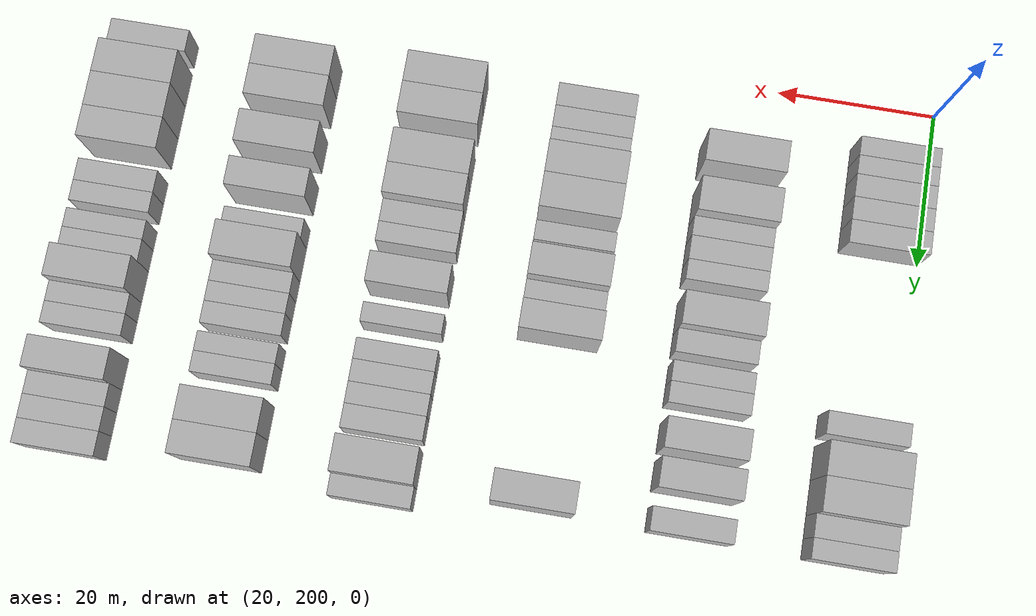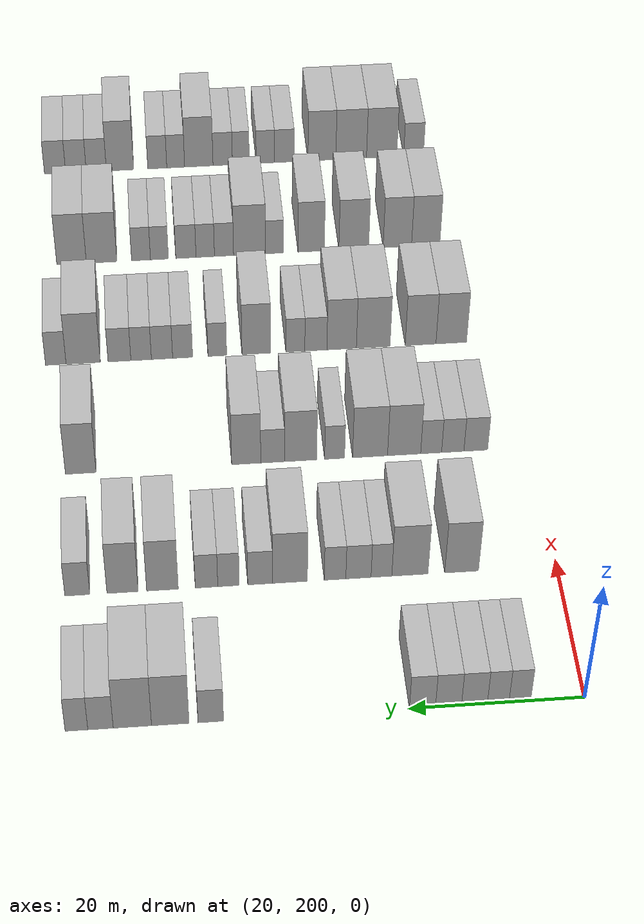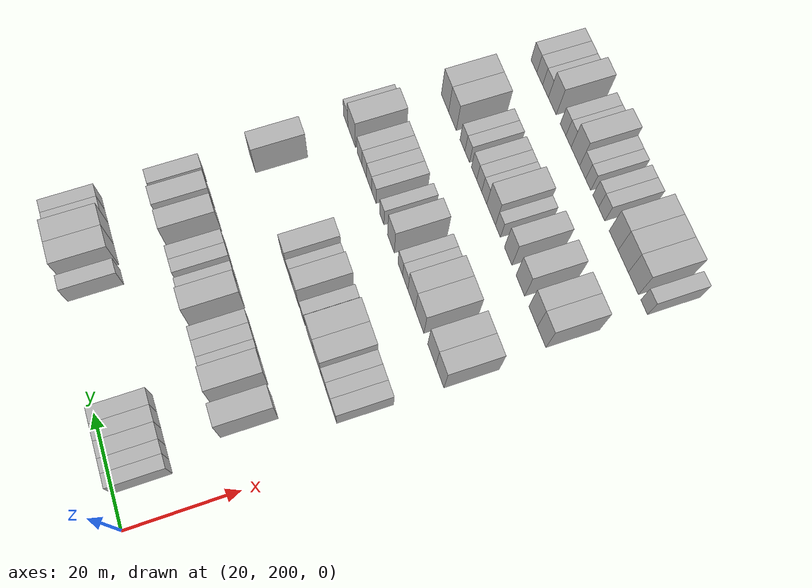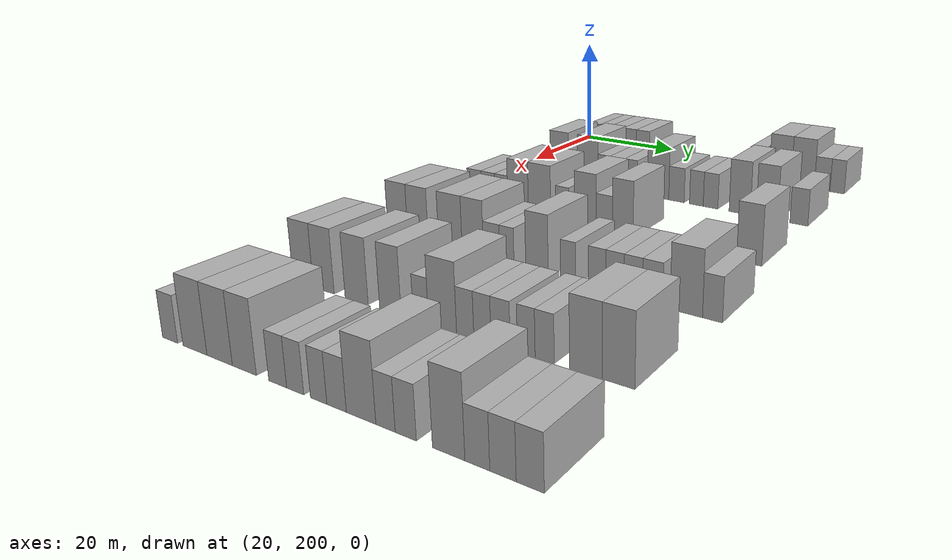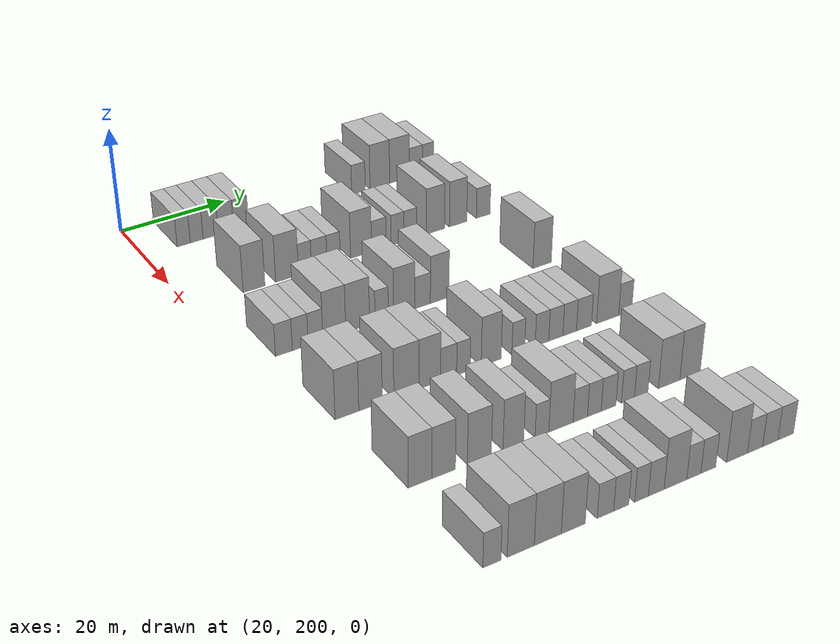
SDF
<sdf version="1.6">
 <world name="default">
  <model name="building_142">
   <static>1</static>
   <pose>25.0000 207.3882 0 0.000000 0.000000 0.000000</pose>
   <link name="link">
    <pose>0 0 3.00 0 0 0</pose>
    <collision name="collision"><geometry><box><size>10.0000 2.4583 6.0000</size></box></geometry></collision>
    <visual name="visual">
     <cast_shadows>0</cast_shadows>
     <geometry><box><size>10.0000 2.4583 6.0000</size></box></geometry>
     <material>
      <script>
       <uri>model://HANNAS_wall/materials/scripts</uri>
       <uri>model://HANNAS_wall/materials/textures</uri>
       <name>vrc/HANNAS_wall</name>
      </script>
     </material>
    </visual>
   </link>
  </model>
  <model name="building_143">
   <static>1</static>
   <pose>25.0000 209.8398 0 0.000000 0.000000 0.000000</pose>
   <link name="link">
    <pose>0 0 3.00 0 0 0</pose>
    <collision name="collision"><geometry><box><size>10.0000 2.4448 6.0000</size></box></geometry></collision>
    <visual name="visual">
     <cast_shadows>0</cast_shadows>
     <geometry><box><size>10.0000 2.4448 6.0000</size></box></geometry>
     <material>
      <script>
       <uri>model://HANNAS_wall/materials/scripts</uri>
       <uri>model://HANNAS_wall/materials/textures</uri>
       <name>vrc/HANNAS_wall</name>
      </script>
     </material>
    </visual>
   </link>
  </model>
  <model name="building_144">
   <static>1</static>
   <pose>25.0000 212.5247 0 0.000000 0.000000 0.000000</pose>
   <link name="link">
    <pose>0 0 3.00 0 0 0</pose>
    <collision name="collision"><geometry><box><size>10.0000 2.9249 6.0000</size></box></geometry></collision>
    <visual name="visual">
     <cast_shadows>0</cast_shadows>
     <geometry><box><size>10.0000 2.9249 6.0000</size></box></geometry>
     <material>
      <script>
       <uri>model://HANNAS_wall/materials/scripts</uri>
       <uri>model://HANNAS_wall/materials/textures</uri>
       <name>vrc/HANNAS_wall</name>
      </script>
     </material>
    </visual>
   </link>
  </model>
  <model name="building_145">
   <static>1</static>
   <pose>25.0000 215.4558 0 0.000000 0.000000 0.000000</pose>
   <link name="link">
    <pose>0 0 3.00 0 0 0</pose>
    <collision name="collision"><geometry><box><size>10.0000 2.9374 6.0000</size></box></geometry></collision>
    <visual name="visual">
     <cast_shadows>0</cast_shadows>
     <geometry><box><size>10.0000 2.9374 6.0000</size></box></geometry>
     <material>
      <script>
       <uri>model://HANNAS_wall/materials/scripts</uri>
       <uri>model://HANNAS_wall/materials/textures</uri>
       <name>vrc/HANNAS_wall</name>
      </script>
     </material>
    </visual>
   </link>
  </model>
  <model name="building_146">
   <static>1</static>
   <pose>25.0000 218.3925 0 0.000000 0.000000 0.000000</pose>
   <link name="link">
    <pose>0 0 3.00 0 0 0</pose>
    <collision name="collision"><geometry><box><size>10.0000 2.9360 6.0000</size></box></geometry></collision>
    <visual name="visual">
     <cast_shadows>0</cast_shadows>
     <geometry><box><size>10.0000 2.9360 6.0000</size></box></geometry>
     <material>
      <script>
       <uri>model://HANNAS_wall/materials/scripts</uri>
       <uri>model://HANNAS_wall/materials/textures</uri>
       <name>vrc/HANNAS_wall</name>
      </script>
     </material>
    </visual>
   </link>
  </model>
  <model name="building_147">
   <static>1</static>
   <pose>25.0000 242.1248 0 0.000000 0.000000 0.000000</pose>
   <link name="link">
    <pose>0 0 3.00 0 0 0</pose>
    <collision name="collision"><geometry><box><size>10.0000 2.8428 6.0000</size></box></geometry></collision>
    <visual name="visual">
     <cast_shadows>0</cast_shadows>
     <geometry><box><size>10.0000 2.8428 6.0000</size></box></geometry>
     <material>
      <script>
       <uri>model://HANNAS_wall/materials/scripts</uri>
       <uri>model://HANNAS_wall/materials/textures</uri>
       <name>vrc/HANNAS_wall</name>
      </script>
     </material>
    </visual>
   </link>
  </model>
  <model name="building_148">
   <static>1</static>
   <pose>25.0000 246.6315 0 0.000000 0.000000 0.000000</pose>
   <link name="link">
    <pose>0 0 4.50 0 0 0</pose>
    <collision name="collision"><geometry><box><size>10.0000 4.1706 9.0000</size></box></geometry></collision>
    <visual name="visual">
     <cast_shadows>0</cast_shadows>
     <geometry><box><size>10.0000 4.1706 9.0000</size></box></geometry>
     <material>
      <script>
       <uri>model://HANNAS_wall/materials/scripts</uri>
       <uri>model://HANNAS_wall/materials/textures</uri>
       <name>vrc/HANNAS_wall</name>
      </script>
     </material>
    </visual>
   </link>
  </model>
  <model name="building_149">
   <static>1</static>
   <pose>25.0000 250.8451 0 0.000000 0.000000 0.000000</pose>
   <link name="link">
    <pose>0 0 4.50 0 0 0</pose>
    <collision name="collision"><geometry><box><size>10.0000 4.2565 9.0000</size></box></geometry></collision>
    <visual name="visual">
     <cast_shadows>0</cast_shadows>
     <geometry><box><size>10.0000 4.2565 9.0000</size></box></geometry>
     <material>
      <script>
       <uri>model://HANNAS_wall/materials/scripts</uri>
       <uri>model://HANNAS_wall/materials/textures</uri>
       <name>vrc/HANNAS_wall</name>
      </script>
     </material>
    </visual>
   </link>
  </model>
  <model name="building_150">
   <static>1</static>
   <pose>25.0000 254.3845 0 0.000000 0.000000 0.000000</pose>
   <link name="link">
    <pose>0 0 3.00 0 0 0</pose>
    <collision name="collision"><geometry><box><size>10.0000 2.8224 6.0000</size></box></geometry></collision>
    <visual name="visual">
     <cast_shadows>0</cast_shadows>
     <geometry><box><size>10.0000 2.8224 6.0000</size></box></geometry>
     <material>
      <script>
       <uri>model://HANNAS_wall/materials/scripts</uri>
       <uri>model://HANNAS_wall/materials/textures</uri>
       <name>vrc/HANNAS_wall</name>
      </script>
     </material>
    </visual>
   </link>
  </model>
  <model name="building_151">
   <static>1</static>
   <pose>25.0000 257.0540 0 0.000000 0.000000 0.000000</pose>
   <link name="link">
    <pose>0 0 3.00 0 0 0</pose>
    <collision name="collision"><geometry><box><size>10.0000 2.5165 6.0000</size></box></geometry></collision>
    <visual name="visual">
     <cast_shadows>0</cast_shadows>
     <geometry><box><size>10.0000 2.5165 6.0000</size></box></geometry>
     <material>
      <script>
       <uri>model://HANNAS_wall/materials/scripts</uri>
       <uri>model://HANNAS_wall/materials/textures</uri>
       <name>vrc/HANNAS_wall</name>
      </script>
     </material>
    </visual>
   </link>
  </model>
  <model name="building_296">
   <static>1</static>
   <pose>44.0000 211.3644 0 0.000000 0.000000 0.000000</pose>
   <link name="link">
    <pose>0 0 4.50 0 0 0</pose>
    <collision name="collision"><geometry><box><size>10.0000 4.0205 9.0000</size></box></geometry></collision>
    <visual name="visual">
     <cast_shadows>0</cast_shadows>
     <geometry><box><size>10.0000 4.0205 9.0000</size></box></geometry>
     <material>
      <script>
       <uri>model://HANNAS_wall/materials/scripts</uri>
       <uri>model://HANNAS_wall/materials/textures</uri>
       <name>vrc/HANNAS_wall</name>
      </script>
     </material>
    </visual>
   </link>
  </model>
  <model name="building_297">
   <static>1</static>
   <pose>44.0000 217.5234 0 0.000000 0.000000 0.000000</pose>
   <link name="link">
    <pose>0 0 4.50 0 0 0</pose>
    <collision name="collision"><geometry><box><size>10.0000 4.2974 9.0000</size></box></geometry></collision>
    <visual name="visual">
     <cast_shadows>0</cast_shadows>
     <geometry><box><size>10.0000 4.2974 9.0000</size></box></geometry>
     <material>
      <script>
       <uri>model://HANNAS_wall/materials/scripts</uri>
       <uri>model://HANNAS_wall/materials/textures</uri>
       <name>vrc/HANNAS_wall</name>
      </script>
     </material>
    </visual>
   </link>
  </model>
  <model name="building_298">
   <static>1</static>
   <pose>44.0000 220.9072 0 0.000000 0.000000 0.000000</pose>
   <link name="link">
    <pose>0 0 3.00 0 0 0</pose>
    <collision name="collision"><geometry><box><size>10.0000 2.4702 6.0000</size></box></geometry></collision>
    <visual name="visual">
     <cast_shadows>0</cast_shadows>
     <geometry><box><size>10.0000 2.4702 6.0000</size></box></geometry>
     <material>
      <script>
       <uri>model://HANNAS_wall/materials/scripts</uri>
       <uri>model://HANNAS_wall/materials/textures</uri>
       <name>vrc/HANNAS_wall</name>
      </script>
     </material>
    </visual>
   </link>
  </model>
  <model name="building_299">
   <static>1</static>
   <pose>44.0000 223.6390 0 0.000000 0.000000 0.000000</pose>
   <link name="link">
    <pose>0 0 3.00 0 0 0</pose>
    <collision name="collision"><geometry><box><size>10.0000 2.9933 6.0000</size></box></geometry></collision>
    <visual name="visual">
     <cast_shadows>0</cast_shadows>
     <geometry><box><size>10.0000 2.9933 6.0000</size></box></geometry>
     <material>
      <script>
       <uri>model://HANNAS_wall/materials/scripts</uri>
       <uri>model://HANNAS_wall/materials/textures</uri>
       <name>vrc/HANNAS_wall</name>
      </script>
     </material>
    </visual>
   </link>
  </model>
  <model name="building_300">
   <static>1</static>
   <pose>44.0000 226.4144 0 0.000000 0.000000 0.000000</pose>
   <link name="link">
    <pose>0 0 3.00 0 0 0</pose>
    <collision name="collision"><geometry><box><size>10.0000 2.5577 6.0000</size></box></geometry></collision>
    <visual name="visual">
     <cast_shadows>0</cast_shadows>
     <geometry><box><size>10.0000 2.5577 6.0000</size></box></geometry>
     <material>
      <script>
       <uri>model://HANNAS_wall/materials/scripts</uri>
       <uri>model://HANNAS_wall/materials/textures</uri>
       <name>vrc/HANNAS_wall</name>
      </script>
     </material>
    </visual>
   </link>
  </model>
  <model name="building_301">
   <static>1</static>
   <pose>44.0000 231.7532 0 0.000000 0.000000 0.000000</pose>
   <link name="link">
    <pose>0 0 4.50 0 0 0</pose>
    <collision name="collision"><geometry><box><size>10.0000 4.1199 9.0000</size></box></geometry></collision>
    <visual name="visual">
     <cast_shadows>0</cast_shadows>
     <geometry><box><size>10.0000 4.1199 9.0000</size></box></geometry>
     <material>
      <script>
       <uri>model://HANNAS_wall/materials/scripts</uri>
       <uri>model://HANNAS_wall/materials/textures</uri>
       <name>vrc/HANNAS_wall</name>
      </script>
     </material>
    </visual>
   </link>
  </model>
  <model name="building_302">
   <static>1</static>
   <pose>44.0000 235.2736 0 0.000000 0.000000 0.000000</pose>
   <link name="link">
    <pose>0 0 3.00 0 0 0</pose>
    <collision name="collision"><geometry><box><size>10.0000 2.9209 6.0000</size></box></geometry></collision>
    <visual name="visual">
     <cast_shadows>0</cast_shadows>
     <geometry><box><size>10.0000 2.9209 6.0000</size></box></geometry>
     <material>
      <script>
       <uri>model://HANNAS_wall/materials/scripts</uri>
       <uri>model://HANNAS_wall/materials/textures</uri>
       <name>vrc/HANNAS_wall</name>
      </script>
     </material>
    </visual>
   </link>
  </model>
  <model name="building_303">
   <static>1</static>
   <pose>44.0000 239.0024 0 0.000000 0.000000 0.000000</pose>
   <link name="link">
    <pose>0 0 3.00 0 0 0</pose>
    <collision name="collision"><geometry><box><size>10.0000 2.5367 6.0000</size></box></geometry></collision>
    <visual name="visual">
     <cast_shadows>0</cast_shadows>
     <geometry><box><size>10.0000 2.5367 6.0000</size></box></geometry>
     <material>
      <script>
       <uri>model://HANNAS_wall/materials/scripts</uri>
       <uri>model://HANNAS_wall/materials/textures</uri>
       <name>vrc/HANNAS_wall</name>
      </script>
     </material>
    </visual>
   </link>
  </model>
  <model name="building_304">
   <static>1</static>
   <pose>44.0000 241.5936 0 0.000000 0.000000 0.000000</pose>
   <link name="link">
    <pose>0 0 3.00 0 0 0</pose>
    <collision name="collision"><geometry><box><size>10.0000 2.6457 6.0000</size></box></geometry></collision>
    <visual name="visual">
     <cast_shadows>0</cast_shadows>
     <geometry><box><size>10.0000 2.6457 6.0000</size></box></geometry>
     <material>
      <script>
       <uri>model://HANNAS_wall/materials/scripts</uri>
       <uri>model://HANNAS_wall/materials/textures</uri>
       <name>vrc/HANNAS_wall</name>
      </script>
     </material>
    </visual>
   </link>
  </model>
  <model name="building_305">
   <static>1</static>
   <pose>44.0000 246.7717 0 0.000000 0.000000 0.000000</pose>
   <link name="link">
    <pose>0 0 4.50 0 0 0</pose>
    <collision name="collision"><geometry><box><size>10.0000 3.7106 9.0000</size></box></geometry></collision>
    <visual name="visual">
     <cast_shadows>0</cast_shadows>
     <geometry><box><size>10.0000 3.7106 9.0000</size></box></geometry>
     <material>
      <script>
       <uri>model://HANNAS_wall/materials/scripts</uri>
       <uri>model://HANNAS_wall/materials/textures</uri>
       <name>vrc/HANNAS_wall</name>
      </script>
     </material>
    </visual>
   </link>
  </model>
  <model name="building_306">
   <static>1</static>
   <pose>44.0000 251.4576 0 0.000000 0.000000 0.000000</pose>
   <link name="link">
    <pose>0 0 4.50 0 0 0</pose>
    <collision name="collision"><geometry><box><size>10.0000 3.6611 9.0000</size></box></geometry></collision>
    <visual name="visual">
     <cast_shadows>0</cast_shadows>
     <geometry><box><size>10.0000 3.6611 9.0000</size></box></geometry>
     <material>
      <script>
       <uri>model://HANNAS_wall/materials/scripts</uri>
       <uri>model://HANNAS_wall/materials/textures</uri>
       <name>vrc/HANNAS_wall</name>
      </script>
     </material>
    </visual>
   </link>
  </model>
  <model name="building_307">
   <static>1</static>
   <pose>44.0000 256.7515 0 0.000000 0.000000 0.000000</pose>
   <link name="link">
    <pose>0 0 3.00 0 0 0</pose>
    <collision name="collision"><geometry><box><size>10.0000 2.9267 6.0000</size></box></geometry></collision>
    <visual name="visual">
     <cast_shadows>0</cast_shadows>
     <geometry><box><size>10.0000 2.9267 6.0000</size></box></geometry>
     <material>
      <script>
       <uri>model://HANNAS_wall/materials/scripts</uri>
       <uri>model://HANNAS_wall/materials/textures</uri>
       <name>vrc/HANNAS_wall</name>
      </script>
     </material>
    </visual>
   </link>
  </model>
  <model name="building_475">
   <static>1</static>
   <pose>63.0000 206.9762 0 0.000000 0.000000 0.000000</pose>
   <link name="link">
    <pose>0 0 3.00 0 0 0</pose>
    <collision name="collision"><geometry><box><size>10.0000 2.9743 6.0000</size></box></geometry></collision>
    <visual name="visual">
     <cast_shadows>0</cast_shadows>
     <geometry><box><size>10.0000 2.9743 6.0000</size></box></geometry>
     <material>
      <script>
       <uri>model://HANNAS_wall/materials/scripts</uri>
       <uri>model://HANNAS_wall/materials/textures</uri>
       <name>vrc/HANNAS_wall</name>
      </script>
     </material>
    </visual>
   </link>
  </model>
  <model name="building_476">
   <static>1</static>
   <pose>63.0000 209.8672 0 0.000000 0.000000 0.000000</pose>
   <link name="link">
    <pose>0 0 3.00 0 0 0</pose>
    <collision name="collision"><geometry><box><size>10.0000 2.8077 6.0000</size></box></geometry></collision>
    <visual name="visual">
     <cast_shadows>0</cast_shadows>
     <geometry><box><size>10.0000 2.8077 6.0000</size></box></geometry>
     <material>
      <script>
       <uri>model://HANNAS_wall/materials/scripts</uri>
       <uri>model://HANNAS_wall/materials/textures</uri>
       <name>vrc/HANNAS_wall</name>
      </script>
     </material>
    </visual>
   </link>
  </model>
  <model name="building_477">
   <static>1</static>
   <pose>63.0000 212.5830 0 0.000000 0.000000 0.000000</pose>
   <link name="link">
    <pose>0 0 3.00 0 0 0</pose>
    <collision name="collision"><geometry><box><size>10.0000 2.6239 6.0000</size></box></geometry></collision>
    <visual name="visual">
     <cast_shadows>0</cast_shadows>
     <geometry><box><size>10.0000 2.6239 6.0000</size></box></geometry>
     <material>
      <script>
       <uri>model://HANNAS_wall/materials/scripts</uri>
       <uri>model://HANNAS_wall/materials/textures</uri>
       <name>vrc/HANNAS_wall</name>
      </script>
     </material>
    </visual>
   </link>
  </model>
  <model name="building_478">
   <static>1</static>
   <pose>63.0000 215.9695 0 0.000000 0.000000 0.000000</pose>
   <link name="link">
    <pose>0 0 4.50 0 0 0</pose>
    <collision name="collision"><geometry><box><size>10.0000 4.1491 9.0000</size></box></geometry></collision>
    <visual name="visual">
     <cast_shadows>0</cast_shadows>
     <geometry><box><size>10.0000 4.1491 9.0000</size></box></geometry>
     <material>
      <script>
       <uri>model://HANNAS_wall/materials/scripts</uri>
       <uri>model://HANNAS_wall/materials/textures</uri>
       <name>vrc/HANNAS_wall</name>
      </script>
     </material>
    </visual>
   </link>
  </model>
  <model name="building_479">
   <static>1</static>
   <pose>63.0000 220.2307 0 0.000000 0.000000 0.000000</pose>
   <link name="link">
    <pose>0 0 4.50 0 0 0</pose>
    <collision name="collision"><geometry><box><size>10.0000 4.3733 9.0000</size></box></geometry></collision>
    <visual name="visual">
     <cast_shadows>0</cast_shadows>
     <geometry><box><size>10.0000 4.3733 9.0000</size></box></geometry>
     <material>
      <script>
       <uri>model://HANNAS_wall/materials/scripts</uri>
       <uri>model://HANNAS_wall/materials/textures</uri>
       <name>vrc/HANNAS_wall</name>
      </script>
     </material>
    </visual>
   </link>
  </model>
  <model name="building_480">
   <static>1</static>
   <pose>63.0000 224.6604 0 0.000000 0.000000 0.000000</pose>
   <link name="link">
    <pose>0 0 3.00 0 0 0</pose>
    <collision name="collision"><geometry><box><size>10.0000 2.4862 6.0000</size></box></geometry></collision>
    <visual name="visual">
     <cast_shadows>0</cast_shadows>
     <geometry><box><size>10.0000 2.4862 6.0000</size></box></geometry>
     <material>
      <script>
       <uri>model://HANNAS_wall/materials/scripts</uri>
       <uri>model://HANNAS_wall/materials/textures</uri>
       <name>vrc/HANNAS_wall</name>
      </script>
     </material>
    </visual>
   </link>
  </model>
  <model name="building_481">
   <static>1</static>
   <pose>63.0000 228.9023 0 0.000000 0.000000 0.000000</pose>
   <link name="link">
    <pose>0 0 4.50 0 0 0</pose>
    <collision name="collision"><geometry><box><size>10.0000 3.9976 9.0000</size></box></geometry></collision>
    <visual name="visual">
     <cast_shadows>0</cast_shadows>
     <geometry><box><size>10.0000 3.9976 9.0000</size></box></geometry>
     <material>
      <script>
       <uri>model://HANNAS_wall/materials/scripts</uri>
       <uri>model://HANNAS_wall/materials/textures</uri>
       <name>vrc/HANNAS_wall</name>
      </script>
     </material>
    </visual>
   </link>
  </model>
  <model name="building_482">
   <static>1</static>
   <pose>63.0000 232.3805 0 0.000000 0.000000 0.000000</pose>
   <link name="link">
    <pose>0 0 3.00 0 0 0</pose>
    <collision name="collision"><geometry><box><size>10.0000 2.9589 6.0000</size></box></geometry></collision>
    <visual name="visual">
     <cast_shadows>0</cast_shadows>
     <geometry><box><size>10.0000 2.9589 6.0000</size></box></geometry>
     <material>
      <script>
       <uri>model://HANNAS_wall/materials/scripts</uri>
       <uri>model://HANNAS_wall/materials/textures</uri>
       <name>vrc/HANNAS_wall</name>
      </script>
     </material>
    </visual>
   </link>
  </model>
  <model name="building_483">
   <static>1</static>
   <pose>63.0000 235.6655 0 0.000000 0.000000 0.000000</pose>
   <link name="link">
    <pose>0 0 4.50 0 0 0</pose>
    <collision name="collision"><geometry><box><size>10.0000 3.6110 9.0000</size></box></geometry></collision>
    <visual name="visual">
     <cast_shadows>0</cast_shadows>
     <geometry><box><size>10.0000 3.6110 9.0000</size></box></geometry>
     <material>
      <script>
       <uri>model://HANNAS_wall/materials/scripts</uri>
       <uri>model://HANNAS_wall/materials/textures</uri>
       <name>vrc/HANNAS_wall</name>
      </script>
     </material>
    </visual>
   </link>
  </model>
  <model name="building_484">
   <static>1</static>
   <pose>63.0000 256.1323 0 0.000000 0.000000 0.000000</pose>
   <link name="link">
    <pose>0 0 4.50 0 0 0</pose>
    <collision name="collision"><geometry><box><size>10.0000 3.7742 9.0000</size></box></geometry></collision>
    <visual name="visual">
     <cast_shadows>0</cast_shadows>
     <geometry><box><size>10.0000 3.7742 9.0000</size></box></geometry>
     <material>
      <script>
       <uri>model://HANNAS_wall/materials/scripts</uri>
       <uri>model://HANNAS_wall/materials/textures</uri>
       <name>vrc/HANNAS_wall</name>
      </script>
     </material>
    </visual>
   </link>
  </model>
  <model name="building_651">
   <static>1</static>
   <pose>82.0000 207.5186 0 0.000000 0.000000 0.000000</pose>
   <link name="link">
    <pose>0 0 4.50 0 0 0</pose>
    <collision name="collision"><geometry><box><size>10.0000 4.0314 9.0000</size></box></geometry></collision>
    <visual name="visual">
     <cast_shadows>0</cast_shadows>
     <geometry><box><size>10.0000 4.0314 9.0000</size></box></geometry>
     <material>
      <script>
       <uri>model://HANNAS_wall/materials/scripts</uri>
       <uri>model://HANNAS_wall/materials/textures</uri>
       <name>vrc/HANNAS_wall</name>
      </script>
     </material>
    </visual>
   </link>
  </model>
  <model name="building_652">
   <static>1</static>
   <pose>82.0000 211.5571 0 0.000000 0.000000 0.000000</pose>
   <link name="link">
    <pose>0 0 4.50 0 0 0</pose>
    <collision name="collision"><geometry><box><size>10.0000 4.0456 9.0000</size></box></geometry></collision>
    <visual name="visual">
     <cast_shadows>0</cast_shadows>
     <geometry><box><size>10.0000 4.0456 9.0000</size></box></geometry>
     <material>
      <script>
       <uri>model://HANNAS_wall/materials/scripts</uri>
       <uri>model://HANNAS_wall/materials/textures</uri>
       <name>vrc/HANNAS_wall</name>
      </script>
     </material>
    </visual>
   </link>
  </model>
  <model name="building_653">
   <static>1</static>
   <pose>82.0000 217.7902 0 0.000000 0.000000 0.000000</pose>
   <link name="link">
    <pose>0 0 4.50 0 0 0</pose>
    <collision name="collision"><geometry><box><size>10.0000 4.4208 9.0000</size></box></geometry></collision>
    <visual name="visual">
     <cast_shadows>0</cast_shadows>
     <geometry><box><size>10.0000 4.4208 9.0000</size></box></geometry>
     <material>
      <script>
       <uri>model://HANNAS_wall/materials/scripts</uri>
       <uri>model://HANNAS_wall/materials/textures</uri>
       <name>vrc/HANNAS_wall</name>
      </script>
     </material>
    </visual>
   </link>
  </model>
  <model name="building_654">
   <static>1</static>
   <pose>82.0000 221.9342 0 0.000000 0.000000 0.000000</pose>
   <link name="link">
    <pose>0 0 4.50 0 0 0</pose>
    <collision name="collision"><geometry><box><size>10.0000 3.8672 9.0000</size></box></geometry></collision>
    <visual name="visual">
     <cast_shadows>0</cast_shadows>
     <geometry><box><size>10.0000 3.8672 9.0000</size></box></geometry>
     <material>
      <script>
       <uri>model://HANNAS_wall/materials/scripts</uri>
       <uri>model://HANNAS_wall/materials/textures</uri>
       <name>vrc/HANNAS_wall</name>
      </script>
     </material>
    </visual>
   </link>
  </model>
  <model name="building_655">
   <static>1</static>
   <pose>82.0000 225.3136 0 0.000000 0.000000 0.000000</pose>
   <link name="link">
    <pose>0 0 3.00 0 0 0</pose>
    <collision name="collision"><geometry><box><size>10.0000 2.8915 6.0000</size></box></geometry></collision>
    <visual name="visual">
     <cast_shadows>0</cast_shadows>
     <geometry><box><size>10.0000 2.8915 6.0000</size></box></geometry>
     <material>
      <script>
       <uri>model://HANNAS_wall/materials/scripts</uri>
       <uri>model://HANNAS_wall/materials/textures</uri>
       <name>vrc/HANNAS_wall</name>
      </script>
     </material>
    </visual>
   </link>
  </model>
  <model name="building_656">
   <static>1</static>
   <pose>82.0000 227.9972 0 0.000000 0.000000 0.000000</pose>
   <link name="link">
    <pose>0 0 3.00 0 0 0</pose>
    <collision name="collision"><geometry><box><size>10.0000 2.4757 6.0000</size></box></geometry></collision>
    <visual name="visual">
     <cast_shadows>0</cast_shadows>
     <geometry><box><size>10.0000 2.4757 6.0000</size></box></geometry>
     <material>
      <script>
       <uri>model://HANNAS_wall/materials/scripts</uri>
       <uri>model://HANNAS_wall/materials/textures</uri>
       <name>vrc/HANNAS_wall</name>
      </script>
     </material>
    </visual>
   </link>
  </model>
  <model name="building_657">
   <static>1</static>
   <pose>82.0000 233.0988 0 0.000000 0.000000 0.000000</pose>
   <link name="link">
    <pose>0 0 4.50 0 0 0</pose>
    <collision name="collision"><geometry><box><size>10.0000 3.7275 9.0000</size></box></geometry></collision>
    <visual name="visual">
     <cast_shadows>0</cast_shadows>
     <geometry><box><size>10.0000 3.7275 9.0000</size></box></geometry>
     <material>
      <script>
       <uri>model://HANNAS_wall/materials/scripts</uri>
       <uri>model://HANNAS_wall/materials/textures</uri>
       <name>vrc/HANNAS_wall</name>
      </script>
     </material>
    </visual>
   </link>
  </model>
  <model name="building_658">
   <static>1</static>
   <pose>82.0000 238.1775 0 0.000000 0.000000 0.000000</pose>
   <link name="link">
    <pose>0 0 3.00 0 0 0</pose>
    <collision name="collision"><geometry><box><size>10.0000 2.4299 6.0000</size></box></geometry></collision>
    <visual name="visual">
     <cast_shadows>0</cast_shadows>
     <geometry><box><size>10.0000 2.4299 6.0000</size></box></geometry>
     <material>
      <script>
       <uri>model://HANNAS_wall/materials/scripts</uri>
       <uri>model://HANNAS_wall/materials/textures</uri>
       <name>vrc/HANNAS_wall</name>
      </script>
     </material>
    </visual>
   </link>
  </model>
  <model name="building_659">
   <static>1</static>
   <pose>82.0000 242.6937 0 0.000000 0.000000 0.000000</pose>
   <link name="link">
    <pose>0 0 3.00 0 0 0</pose>
    <collision name="collision"><geometry><box><size>10.0000 2.6026 6.0000</size></box></geometry></collision>
    <visual name="visual">
     <cast_shadows>0</cast_shadows>
     <geometry><box><size>10.0000 2.6026 6.0000</size></box></geometry>
     <material>
      <script>
       <uri>model://HANNAS_wall/materials/scripts</uri>
       <uri>model://HANNAS_wall/materials/textures</uri>
       <name>vrc/HANNAS_wall</name>
      </script>
     </material>
    </visual>
   </link>
  </model>
  <model name="building_660">
   <static>1</static>
   <pose>82.0000 245.3737 0 0.000000 0.000000 0.000000</pose>
   <link name="link">
    <pose>0 0 3.00 0 0 0</pose>
    <collision name="collision"><geometry><box><size>10.0000 2.7574 6.0000</size></box></geometry></collision>
    <visual name="visual">
     <cast_shadows>0</cast_shadows>
     <geometry><box><size>10.0000 2.7574 6.0000</size></box></geometry>
     <material>
      <script>
       <uri>model://HANNAS_wall/materials/scripts</uri>
       <uri>model://HANNAS_wall/materials/textures</uri>
       <name>vrc/HANNAS_wall</name>
      </script>
     </material>
    </visual>
   </link>
  </model>
  <model name="building_661">
   <static>1</static>
   <pose>82.0000 248.0823 0 0.000000 0.000000 0.000000</pose>
   <link name="link">
    <pose>0 0 3.00 0 0 0</pose>
    <collision name="collision"><geometry><box><size>10.0000 2.6599 6.0000</size></box></geometry></collision>
    <visual name="visual">
     <cast_shadows>0</cast_shadows>
     <geometry><box><size>10.0000 2.6599 6.0000</size></box></geometry>
     <material>
      <script>
       <uri>model://HANNAS_wall/materials/scripts</uri>
       <uri>model://HANNAS_wall/materials/textures</uri>
       <name>vrc/HANNAS_wall</name>
      </script>
     </material>
    </visual>
   </link>
  </model>
  <model name="building_662">
   <static>1</static>
   <pose>82.0000 250.8944 0 0.000000 0.000000 0.000000</pose>
   <link name="link">
    <pose>0 0 3.00 0 0 0</pose>
    <collision name="collision"><geometry><box><size>10.0000 2.9642 6.0000</size></box></geometry></collision>
    <visual name="visual">
     <cast_shadows>0</cast_shadows>
     <geometry><box><size>10.0000 2.9642 6.0000</size></box></geometry>
     <material>
      <script>
       <uri>model://HANNAS_wall/materials/scripts</uri>
       <uri>model://HANNAS_wall/materials/textures</uri>
       <name>vrc/HANNAS_wall</name>
      </script>
     </material>
    </visual>
   </link>
  </model>
  <model name="building_663">
   <static>1</static>
   <pose>82.0000 255.5944 0 0.000000 0.000000 0.000000</pose>
   <link name="link">
    <pose>0 0 4.50 0 0 0</pose>
    <collision name="collision"><geometry><box><size>10.0000 4.4358 9.0000</size></box></geometry></collision>
    <visual name="visual">
     <cast_shadows>0</cast_shadows>
     <geometry><box><size>10.0000 4.4358 9.0000</size></box></geometry>
     <material>
      <script>
       <uri>model://HANNAS_wall/materials/scripts</uri>
       <uri>model://HANNAS_wall/materials/textures</uri>
       <name>vrc/HANNAS_wall</name>
      </script>
     </material>
    </visual>
   </link>
  </model>
  <model name="building_664">
   <static>1</static>
   <pose>82.0000 259.1375 0 0.000000 0.000000 0.000000</pose>
   <link name="link">
    <pose>0 0 3.00 0 0 0</pose>
    <collision name="collision"><geometry><box><size>10.0000 2.6506 6.0000</size></box></geometry></collision>
    <visual name="visual">
     <cast_shadows>0</cast_shadows>
     <geometry><box><size>10.0000 2.6506 6.0000</size></box></geometry>
     <material>
      <script>
       <uri>model://HANNAS_wall/materials/scripts</uri>
       <uri>model://HANNAS_wall/materials/textures</uri>
       <name>vrc/HANNAS_wall</name>
      </script>
     </material>
    </visual>
   </link>
  </model>
  <model name="building_821">
   <static>1</static>
   <pose>101.0000 208.5144 0 0.000000 0.000000 0.000000</pose>
   <link name="link">
    <pose>0 0 4.50 0 0 0</pose>
    <collision name="collision"><geometry><box><size>10.0000 3.8992 9.0000</size></box></geometry></collision>
    <visual name="visual">
     <cast_shadows>0</cast_shadows>
     <geometry><box><size>10.0000 3.8992 9.0000</size></box></geometry>
     <material>
      <script>
       <uri>model://HANNAS_wall/materials/scripts</uri>
       <uri>model://HANNAS_wall/materials/textures</uri>
       <name>vrc/HANNAS_wall</name>
      </script>
     </material>
    </visual>
   </link>
  </model>
  <model name="building_822">
   <static>1</static>
   <pose>101.0000 212.4165 0 0.000000 0.000000 0.000000</pose>
   <link name="link">
    <pose>0 0 4.50 0 0 0</pose>
    <collision name="collision"><geometry><box><size>10.0000 3.9050 9.0000</size></box></geometry></collision>
    <visual name="visual">
     <cast_shadows>0</cast_shadows>
     <geometry><box><size>10.0000 3.9050 9.0000</size></box></geometry>
     <material>
      <script>
       <uri>model://HANNAS_wall/materials/scripts</uri>
       <uri>model://HANNAS_wall/materials/textures</uri>
       <name>vrc/HANNAS_wall</name>
      </script>
     </material>
    </visual>
   </link>
  </model>
  <model name="building_823">
   <static>1</static>
   <pose>101.0000 218.4148 0 0.000000 0.000000 0.000000</pose>
   <link name="link">
    <pose>0 0 4.50 0 0 0</pose>
    <collision name="collision"><geometry><box><size>10.0000 4.0917 9.0000</size></box></geometry></collision>
    <visual name="visual">
     <cast_shadows>0</cast_shadows>
     <geometry><box><size>10.0000 4.0917 9.0000</size></box></geometry>
     <material>
      <script>
       <uri>model://HANNAS_wall/materials/scripts</uri>
       <uri>model://HANNAS_wall/materials/textures</uri>
       <name>vrc/HANNAS_wall</name>
      </script>
     </material>
    </visual>
   </link>
  </model>
  <model name="building_824">
   <static>1</static>
   <pose>101.0000 224.2686 0 0.000000 0.000000 0.000000</pose>
   <link name="link">
    <pose>0 0 4.50 0 0 0</pose>
    <collision name="collision"><geometry><box><size>10.0000 3.6159 9.0000</size></box></geometry></collision>
    <visual name="visual">
     <cast_shadows>0</cast_shadows>
     <geometry><box><size>10.0000 3.6159 9.0000</size></box></geometry>
     <material>
      <script>
       <uri>model://HANNAS_wall/materials/scripts</uri>
       <uri>model://HANNAS_wall/materials/textures</uri>
       <name>vrc/HANNAS_wall</name>
      </script>
     </material>
    </visual>
   </link>
  </model>
  <model name="building_825">
   <static>1</static>
   <pose>101.0000 229.2993 0 0.000000 0.000000 0.000000</pose>
   <link name="link">
    <pose>0 0 3.00 0 0 0</pose>
    <collision name="collision"><geometry><box><size>10.0000 2.4454 6.0000</size></box></geometry></collision>
    <visual name="visual">
     <cast_shadows>0</cast_shadows>
     <geometry><box><size>10.0000 2.4454 6.0000</size></box></geometry>
     <material>
      <script>
       <uri>model://HANNAS_wall/materials/scripts</uri>
       <uri>model://HANNAS_wall/materials/textures</uri>
       <name>vrc/HANNAS_wall</name>
      </script>
     </material>
    </visual>
   </link>
  </model>
  <model name="building_826">
   <static>1</static>
   <pose>101.0000 232.7058 0 0.000000 0.000000 0.000000</pose>
   <link name="link">
    <pose>0 0 4.50 0 0 0</pose>
    <collision name="collision"><geometry><box><size>10.0000 4.3675 9.0000</size></box></geometry></collision>
    <visual name="visual">
     <cast_shadows>0</cast_shadows>
     <geometry><box><size>10.0000 4.3675 9.0000</size></box></geometry>
     <material>
      <script>
       <uri>model://HANNAS_wall/materials/scripts</uri>
       <uri>model://HANNAS_wall/materials/textures</uri>
       <name>vrc/HANNAS_wall</name>
      </script>
     </material>
    </visual>
   </link>
  </model>
  <model name="building_827">
   <static>1</static>
   <pose>101.0000 236.1939 0 0.000000 0.000000 0.000000</pose>
   <link name="link">
    <pose>0 0 3.00 0 0 0</pose>
    <collision name="collision"><geometry><box><size>10.0000 2.6087 6.0000</size></box></geometry></collision>
    <visual name="visual">
     <cast_shadows>0</cast_shadows>
     <geometry><box><size>10.0000 2.6087 6.0000</size></box></geometry>
     <material>
      <script>
       <uri>model://HANNAS_wall/materials/scripts</uri>
       <uri>model://HANNAS_wall/materials/textures</uri>
       <name>vrc/HANNAS_wall</name>
      </script>
     </material>
    </visual>
   </link>
  </model>
  <model name="building_828">
   <static>1</static>
   <pose>101.0000 238.7583 0 0.000000 0.000000 0.000000</pose>
   <link name="link">
    <pose>0 0 3.00 0 0 0</pose>
    <collision name="collision"><geometry><box><size>10.0000 2.5201 6.0000</size></box></geometry></collision>
    <visual name="visual">
     <cast_shadows>0</cast_shadows>
     <geometry><box><size>10.0000 2.5201 6.0000</size></box></geometry>
     <material>
      <script>
       <uri>model://HANNAS_wall/materials/scripts</uri>
       <uri>model://HANNAS_wall/materials/textures</uri>
       <name>vrc/HANNAS_wall</name>
      </script>
     </material>
    </visual>
   </link>
  </model>
  <model name="building_829">
   <static>1</static>
   <pose>101.0000 241.3967 0 0.000000 0.000000 0.000000</pose>
   <link name="link">
    <pose>0 0 3.00 0 0 0</pose>
    <collision name="collision"><geometry><box><size>10.0000 2.7566 6.0000</size></box></geometry></collision>
    <visual name="visual">
     <cast_shadows>0</cast_shadows>
     <geometry><box><size>10.0000 2.7566 6.0000</size></box></geometry>
     <material>
      <script>
       <uri>model://HANNAS_wall/materials/scripts</uri>
       <uri>model://HANNAS_wall/materials/textures</uri>
       <name>vrc/HANNAS_wall</name>
      </script>
     </material>
    </visual>
   </link>
  </model>
  <model name="building_830">
   <static>1</static>
   <pose>101.0000 244.9947 0 0.000000 0.000000 0.000000</pose>
   <link name="link">
    <pose>0 0 3.00 0 0 0</pose>
    <collision name="collision"><geometry><box><size>10.0000 2.4394 6.0000</size></box></geometry></collision>
    <visual name="visual">
     <cast_shadows>0</cast_shadows>
     <geometry><box><size>10.0000 2.4394 6.0000</size></box></geometry>
     <material>
      <script>
       <uri>model://HANNAS_wall/materials/scripts</uri>
       <uri>model://HANNAS_wall/materials/textures</uri>
       <name>vrc/HANNAS_wall</name>
      </script>
     </material>
    </visual>
   </link>
  </model>
  <model name="building_831">
   <static>1</static>
   <pose>101.0000 247.4989 0 0.000000 0.000000 0.000000</pose>
   <link name="link">
    <pose>0 0 3.00 0 0 0</pose>
    <collision name="collision"><geometry><box><size>10.0000 2.5690 6.0000</size></box></geometry></collision>
    <visual name="visual">
     <cast_shadows>0</cast_shadows>
     <geometry><box><size>10.0000 2.5690 6.0000</size></box></geometry>
     <material>
      <script>
       <uri>model://HANNAS_wall/materials/scripts</uri>
       <uri>model://HANNAS_wall/materials/textures</uri>
       <name>vrc/HANNAS_wall</name>
      </script>
     </material>
    </visual>
   </link>
  </model>
  <model name="building_832">
   <static>1</static>
   <pose>101.0000 252.8576 0 0.000000 0.000000 0.000000</pose>
   <link name="link">
    <pose>0 0 4.50 0 0 0</pose>
    <collision name="collision"><geometry><box><size>10.0000 4.1482 9.0000</size></box></geometry></collision>
    <visual name="visual">
     <cast_shadows>0</cast_shadows>
     <geometry><box><size>10.0000 4.1482 9.0000</size></box></geometry>
     <material>
      <script>
       <uri>model://HANNAS_wall/materials/scripts</uri>
       <uri>model://HANNAS_wall/materials/textures</uri>
       <name>vrc/HANNAS_wall</name>
      </script>
     </material>
    </visual>
   </link>
  </model>
  <model name="building_833">
   <static>1</static>
   <pose>101.0000 256.9338 0 0.000000 0.000000 0.000000</pose>
   <link name="link">
    <pose>0 0 4.50 0 0 0</pose>
    <collision name="collision"><geometry><box><size>10.0000 4.0043 9.0000</size></box></geometry></collision>
    <visual name="visual">
     <cast_shadows>0</cast_shadows>
     <geometry><box><size>10.0000 4.0043 9.0000</size></box></geometry>
     <material>
      <script>
       <uri>model://HANNAS_wall/materials/scripts</uri>
       <uri>model://HANNAS_wall/materials/textures</uri>
       <name>vrc/HANNAS_wall</name>
      </script>
     </material>
    </visual>
   </link>
  </model>
  <model name="building_992">
   <static>1</static>
   <pose>120.0000 207.8778 0 0.000000 0.000000 0.000000</pose>
   <link name="link">
    <pose>0 0 3.00 0 0 0</pose>
    <collision name="collision"><geometry><box><size>10.0000 2.8482 6.0000</size></box></geometry></collision>
    <visual name="visual">
     <cast_shadows>0</cast_shadows>
     <geometry><box><size>10.0000 2.8482 6.0000</size></box></geometry>
     <material>
      <script>
       <uri>model://HANNAS_wall/materials/scripts</uri>
       <uri>model://HANNAS_wall/materials/textures</uri>
       <name>vrc/HANNAS_wall</name>
      </script>
     </material>
    </visual>
   </link>
  </model>
  <model name="building_993">
   <static>1</static>
   <pose>120.0000 212.4800 0 0.000000 0.000000 0.000000</pose>
   <link name="link">
    <pose>0 0 4.50 0 0 0</pose>
    <collision name="collision"><geometry><box><size>10.0000 4.3563 9.0000</size></box></geometry></collision>
    <visual name="visual">
     <cast_shadows>0</cast_shadows>
     <geometry><box><size>10.0000 4.3563 9.0000</size></box></geometry>
     <material>
      <script>
       <uri>model://HANNAS_wall/materials/scripts</uri>
       <uri>model://HANNAS_wall/materials/textures</uri>
       <name>vrc/HANNAS_wall</name>
      </script>
     </material>
    </visual>
   </link>
  </model>
  <model name="building_994">
   <static>1</static>
   <pose>120.0000 216.8635 0 0.000000 0.000000 0.000000</pose>
   <link name="link">
    <pose>0 0 4.50 0 0 0</pose>
    <collision name="collision"><geometry><box><size>10.0000 4.4106 9.0000</size></box></geometry></collision>
    <visual name="visual">
     <cast_shadows>0</cast_shadows>
     <geometry><box><size>10.0000 4.4106 9.0000</size></box></geometry>
     <material>
      <script>
       <uri>model://HANNAS_wall/materials/scripts</uri>
       <uri>model://HANNAS_wall/materials/textures</uri>
       <name>vrc/HANNAS_wall</name>
      </script>
     </material>
    </visual>
   </link>
  </model>
  <model name="building_995">
   <static>1</static>
   <pose>120.0000 221.0652 0 0.000000 0.000000 0.000000</pose>
   <link name="link">
    <pose>0 0 4.50 0 0 0</pose>
    <collision name="collision"><geometry><box><size>10.0000 3.9928 9.0000</size></box></geometry></collision>
    <visual name="visual">
     <cast_shadows>0</cast_shadows>
     <geometry><box><size>10.0000 3.9928 9.0000</size></box></geometry>
     <material>
      <script>
       <uri>model://HANNAS_wall/materials/scripts</uri>
       <uri>model://HANNAS_wall/materials/textures</uri>
       <name>vrc/HANNAS_wall</name>
      </script>
     </material>
    </visual>
   </link>
  </model>
  <model name="building_996">
   <static>1</static>
   <pose>120.0000 226.4651 0 0.000000 0.000000 0.000000</pose>
   <link name="link">
    <pose>0 0 3.00 0 0 0</pose>
    <collision name="collision"><geometry><box><size>10.0000 2.8070 6.0000</size></box></geometry></collision>
    <visual name="visual">
     <cast_shadows>0</cast_shadows>
     <geometry><box><size>10.0000 2.8070 6.0000</size></box></geometry>
     <material>
      <script>
       <uri>model://HANNAS_wall/materials/scripts</uri>
       <uri>model://HANNAS_wall/materials/textures</uri>
       <name>vrc/HANNAS_wall</name>
      </script>
     </material>
    </visual>
   </link>
  </model>
  <model name="building_997">
   <static>1</static>
   <pose>120.0000 229.1734 0 0.000000 0.000000 0.000000</pose>
   <link name="link">
    <pose>0 0 3.00 0 0 0</pose>
    <collision name="collision"><geometry><box><size>10.0000 2.6095 6.0000</size></box></geometry></collision>
    <visual name="visual">
     <cast_shadows>0</cast_shadows>
     <geometry><box><size>10.0000 2.6095 6.0000</size></box></geometry>
     <material>
      <script>
       <uri>model://HANNAS_wall/materials/scripts</uri>
       <uri>model://HANNAS_wall/materials/textures</uri>
       <name>vrc/HANNAS_wall</name>
      </script>
     </material>
    </visual>
   </link>
  </model>
  <model name="building_998">
   <static>1</static>
   <pose>120.0000 232.6795 0 0.000000 0.000000 0.000000</pose>
   <link name="link">
    <pose>0 0 3.00 0 0 0</pose>
    <collision name="collision"><geometry><box><size>10.0000 2.4028 6.0000</size></box></geometry></collision>
    <visual name="visual">
     <cast_shadows>0</cast_shadows>
     <geometry><box><size>10.0000 2.4028 6.0000</size></box></geometry>
     <material>
      <script>
       <uri>model://HANNAS_wall/materials/scripts</uri>
       <uri>model://HANNAS_wall/materials/textures</uri>
       <name>vrc/HANNAS_wall</name>
      </script>
     </material>
    </visual>
   </link>
  </model>
  <model name="building_999">
   <static>1</static>
   <pose>120.0000 235.2661 0 0.000000 0.000000 0.000000</pose>
   <link name="link">
    <pose>0 0 3.00 0 0 0</pose>
    <collision name="collision"><geometry><box><size>10.0000 2.7703 6.0000</size></box></geometry></collision>
    <visual name="visual">
     <cast_shadows>0</cast_shadows>
     <geometry><box><size>10.0000 2.7703 6.0000</size></box></geometry>
     <material>
      <script>
       <uri>model://HANNAS_wall/materials/scripts</uri>
       <uri>model://HANNAS_wall/materials/textures</uri>
       <name>vrc/HANNAS_wall</name>
      </script>
     </material>
    </visual>
   </link>
  </model>
  <model name="building_1000">
   <static>1</static>
   <pose>120.0000 238.6749 0 0.000000 0.000000 0.000000</pose>
   <link name="link">
    <pose>0 0 4.50 0 0 0</pose>
    <collision name="collision"><geometry><box><size>10.0000 4.0475 9.0000</size></box></geometry></collision>
    <visual name="visual">
     <cast_shadows>0</cast_shadows>
     <geometry><box><size>10.0000 4.0475 9.0000</size></box></geometry>
     <material>
      <script>
       <uri>model://HANNAS_wall/materials/scripts</uri>
       <uri>model://HANNAS_wall/materials/textures</uri>
       <name>vrc/HANNAS_wall</name>
      </script>
     </material>
    </visual>
   </link>
  </model>
  <model name="building_1001">
   <static>1</static>
   <pose>120.0000 241.9702 0 0.000000 0.000000 0.000000</pose>
   <link name="link">
    <pose>0 0 3.00 0 0 0</pose>
    <collision name="collision"><geometry><box><size>10.0000 2.5432 6.0000</size></box></geometry></collision>
    <visual name="visual">
     <cast_shadows>0</cast_shadows>
     <geometry><box><size>10.0000 2.5432 6.0000</size></box></geometry>
     <material>
      <script>
       <uri>model://HANNAS_wall/materials/scripts</uri>
       <uri>model://HANNAS_wall/materials/textures</uri>
       <name>vrc/HANNAS_wall</name>
      </script>
     </material>
    </visual>
   </link>
  </model>
  <model name="building_1002">
   <static>1</static>
   <pose>120.0000 244.5945 0 0.000000 0.000000 0.000000</pose>
   <link name="link">
    <pose>0 0 3.00 0 0 0</pose>
    <collision name="collision"><geometry><box><size>10.0000 2.7054 6.0000</size></box></geometry></collision>
    <visual name="visual">
     <cast_shadows>0</cast_shadows>
     <geometry><box><size>10.0000 2.7054 6.0000</size></box></geometry>
     <material>
      <script>
       <uri>model://HANNAS_wall/materials/scripts</uri>
       <uri>model://HANNAS_wall/materials/textures</uri>
       <name>vrc/HANNAS_wall</name>
      </script>
     </material>
    </visual>
   </link>
  </model>
  <model name="building_1003">
   <static>1</static>
   <pose>120.0000 249.8879 0 0.000000 0.000000 0.000000</pose>
   <link name="link">
    <pose>0 0 4.50 0 0 0</pose>
    <collision name="collision"><geometry><box><size>10.0000 3.8815 9.0000</size></box></geometry></collision>
    <visual name="visual">
     <cast_shadows>0</cast_shadows>
     <geometry><box><size>10.0000 3.8815 9.0000</size></box></geometry>
     <material>
      <script>
       <uri>model://HANNAS_wall/materials/scripts</uri>
       <uri>model://HANNAS_wall/materials/textures</uri>
       <name>vrc/HANNAS_wall</name>
      </script>
     </material>
    </visual>
   </link>
  </model>
  <model name="building_1004">
   <static>1</static>
   <pose>120.0000 253.2580 0 0.000000 0.000000 0.000000</pose>
   <link name="link">
    <pose>0 0 3.00 0 0 0</pose>
    <collision name="collision"><geometry><box><size>10.0000 2.8585 6.0000</size></box></geometry></collision>
    <visual name="visual">
     <cast_shadows>0</cast_shadows>
     <geometry><box><size>10.0000 2.8585 6.0000</size></box></geometry>
     <material>
      <script>
       <uri>model://HANNAS_wall/materials/scripts</uri>
       <uri>model://HANNAS_wall/materials/textures</uri>
       <name>vrc/HANNAS_wall</name>
      </script>
     </material>
    </visual>
   </link>
  </model>
  <model name="building_1005">
   <static>1</static>
   <pose>120.0000 256.1467 0 0.000000 0.000000 0.000000</pose>
   <link name="link">
    <pose>0 0 3.00 0 0 0</pose>
    <collision name="collision"><geometry><box><size>10.0000 2.9188 6.0000</size></box></geometry></collision>
    <visual name="visual">
     <cast_shadows>0</cast_shadows>
     <geometry><box><size>10.0000 2.9188 6.0000</size></box></geometry>
     <material>
      <script>
       <uri>model://HANNAS_wall/materials/scripts</uri>
       <uri>model://HANNAS_wall/materials/textures</uri>
       <name>vrc/HANNAS_wall</name>
      </script>
     </material>
    </visual>
   </link>
  </model>
  <model name="building_1006">
   <static>1</static>
   <pose>120.0000 259.1045 0 0.000000 0.000000 0.000000</pose>
   <link name="link">
    <pose>0 0 3.00 0 0 0</pose>
    <collision name="collision"><geometry><box><size>10.0000 2.9969 6.0000</size></box></geometry></collision>
    <visual name="visual">
     <cast_shadows>0</cast_shadows>
     <geometry><box><size>10.0000 2.9969 6.0000</size></box></geometry>
     <material>
      <script>
       <uri>model://HANNAS_wall/materials/scripts</uri>
       <uri>model://HANNAS_wall/materials/textures</uri>
       <name>vrc/HANNAS_wall</name>
      </script>
     </material>
    </visual>
   </link>
  </model>
 </world>
</sdf>
